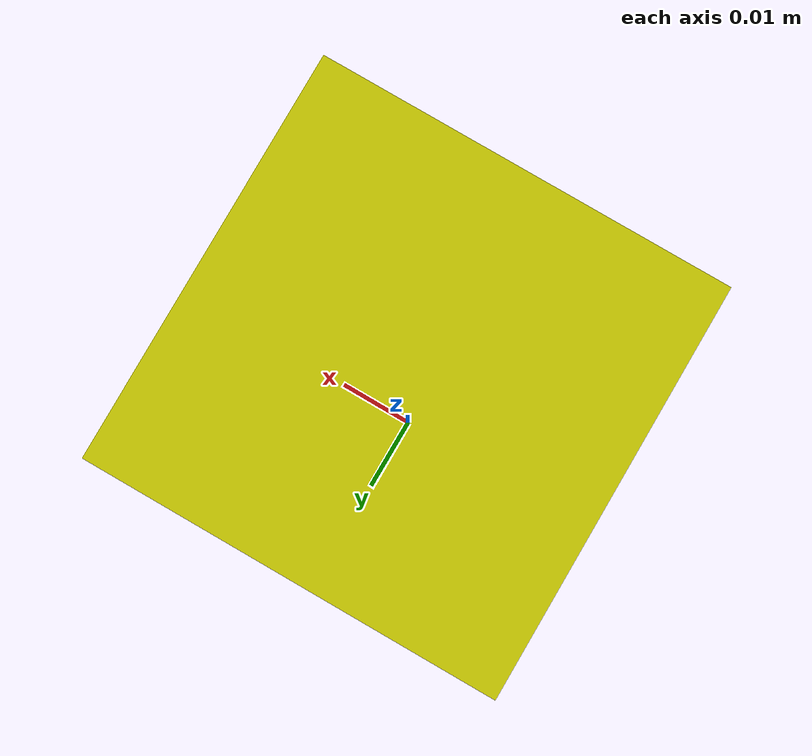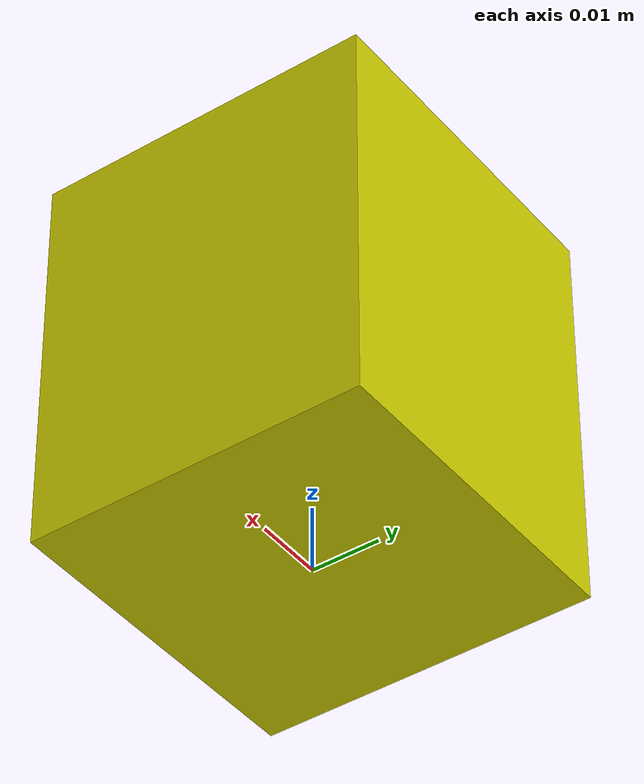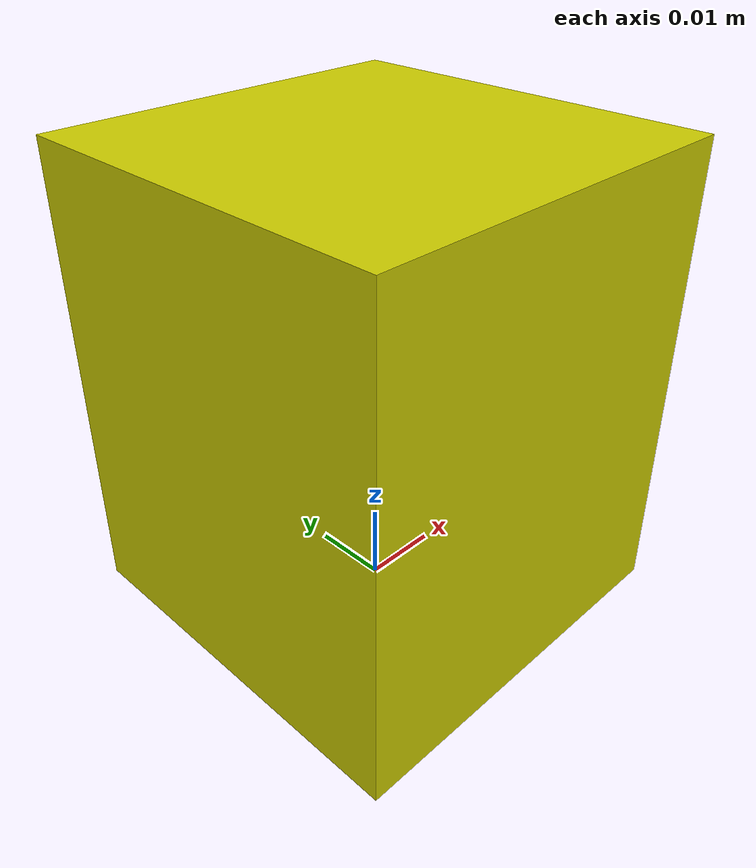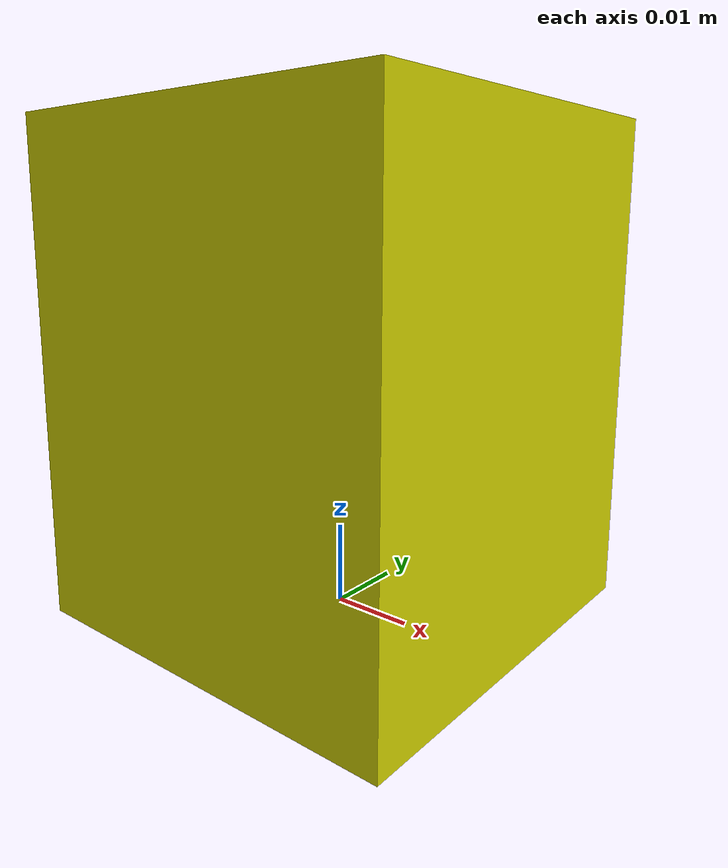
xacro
<?xml version="1.0"?>
<robot xmlns:xacro="http://wiki.ros.org/xacro">
    <xacro:include filename="$(find env_setting)/urdf/inertial_macro.xacro" />

    <xacro:property name="box_w" value="0.05"/>
    <xacro:property name="box_d" value="0.05"/>
    <xacro:property name="box_h" value="0.06"/>
    <xacro:property name="box_mass" value="0.1"/>

    <link name="simple_box">
        <visual>
            <origin xyz="0 0 ${box_h/2}" rpy="0 0 0"/>
            <geometry>
                <box size="${box_w} ${box_d} ${box_h}"/>
            </geometry>
            <material name="yellow">
                <color rgba="0.8 0.8 0.0 0.0"/>
            </material>
        </visual>
        <collision>
            <origin xyz="0 0 ${box_h/2}" rpy="0 0 0"/>
            <geometry>
                <box size="${box_w} ${box_d} ${box_h}"/>
            </geometry>
        </collision>
        <inertial>
            <mass value="${box_mass}"/>
            <origin xyz="0 0 0" rpy="0 0 0"/>
            <xacro:box_inertia m="${box_mass}" x="${box_w}" y="${box_d}" z="${box_h}"/>
        </inertial>
    </link>

    <gazebo reference="simple_box">
        <material>Gazebo/Blue</material>
        <mu1>10.0</mu1>
        <mu2>1000000.0</mu2>
        <maxVel>0.0</maxVel>
        <minDepth>0.0</minDepth>
    </gazebo>
</robot>
